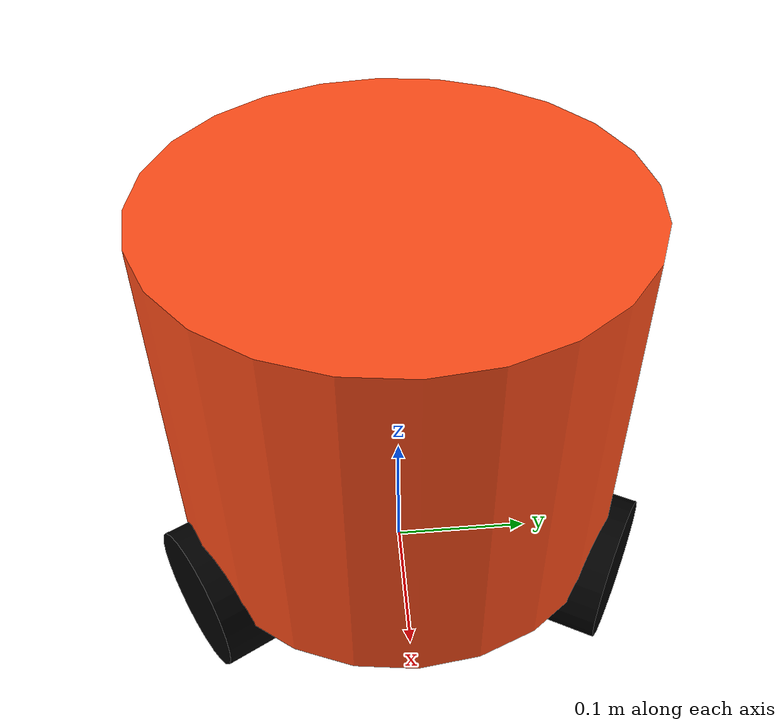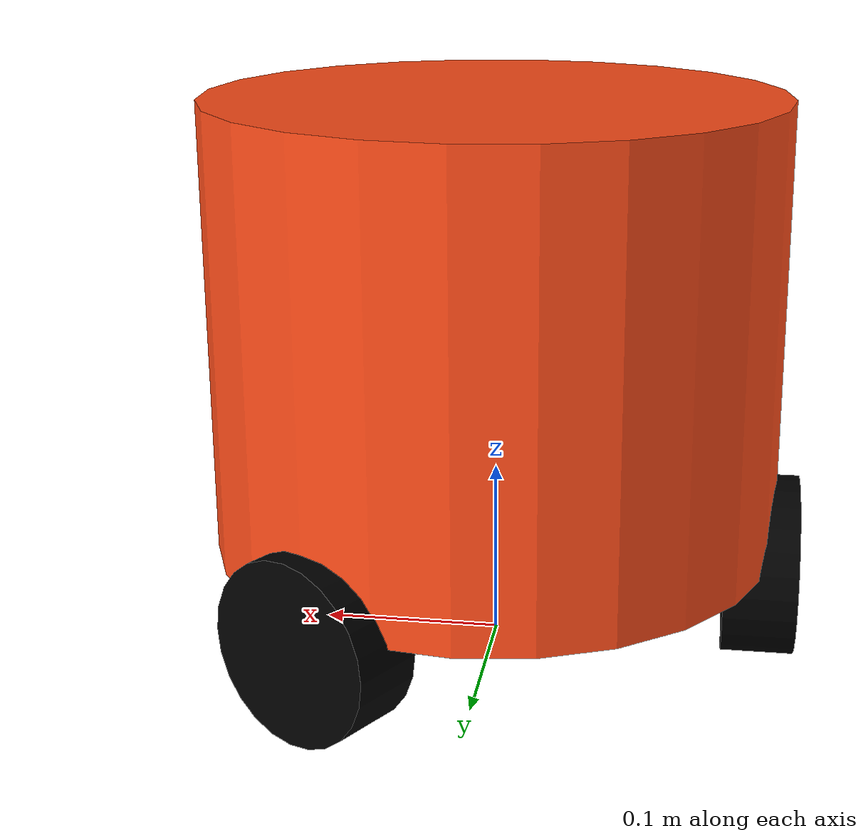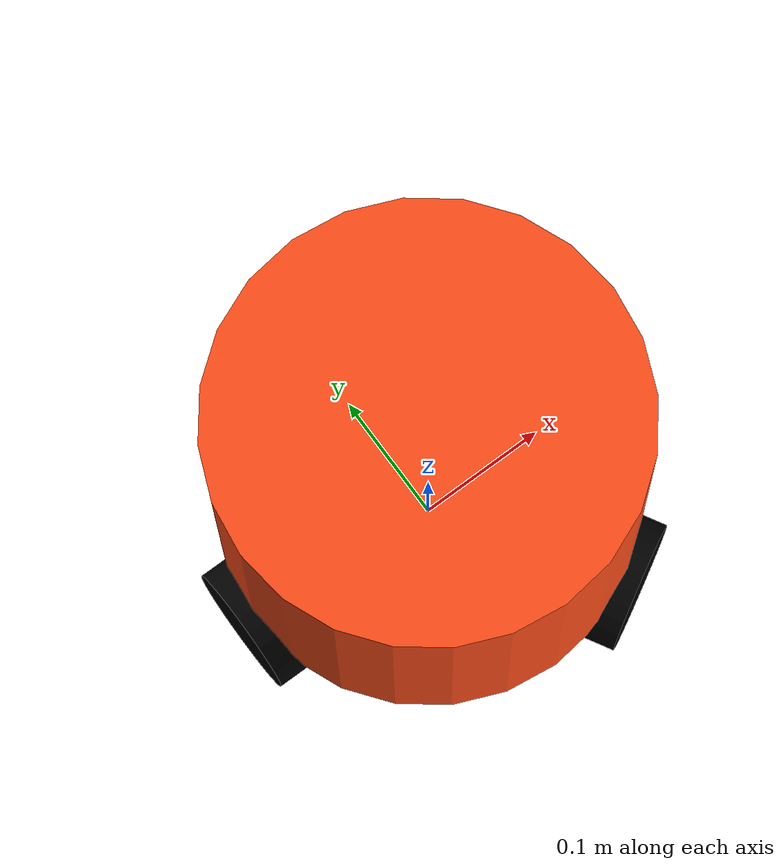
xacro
<?xml version="1.0"?>
<robot xmlns:xacro="http://www.ros.org/wiki/xacro" >

    <xacro:include filename="inertial_macros.xacro"/>
    <xacro:include filename="omniwheel_macros.xacro"/>

    <xacro:property name="robot_name" value="nunbot"/>

    <!-- Robot dimensions -->
    <xacro:property name="chassis_diameter" value="0.315"/>
    <xacro:property name="chassis_height" value="0.25"/>
    <xacro:property name="chassis_mass" value="1.0"/>

    <!-- Omni wheel specs -->
    <xacro:property name="wheel_radius" value="0.05"/> <!-- 10 cm diameter -->
    <xacro:property name="wheel_thickness" value="0.04"/>
    <xacro:property name="wheel_mass" value="0.05"/>
    <!-- Wheels placed at radius from center equal to chassis radius -->
    <xacro:property name="wheel_offset_radius" value="${(chassis_diameter / 2)-0.0075}"/>
    <xacro:property name="wheel_offset_z" value="0.05"/>

    <material name="white">
        <color rgba="1 1 1 1" />
    </material>

    <material name="orange">
        <color rgba="1 0.3 0.1 1"/>
    </material>

    <material name="blue">
        <color rgba="0.2 0.2 1 1"/>
    </material>

    <material name="black">
        <color rgba="0 0 0 1"/>
    </material>

    <material name="red">
        <color rgba="1 0 0 1"/>
    </material>

    <!-- BASE_FOOTPRINT LINK -->
    <link name="${robot_name}/base_footprint">
    </link>

    <!-- BASE_FOOTPRINT LINK -->
    <joint name="base_footprint_joint" type="fixed">
        <parent link="${robot_name}/base_footprint"/>
        <child link="${robot_name}/base_link"/>
        <origin xyz="0 0 0" rpy="0 0 0"/>
    </joint>

    <!-- BASE LINK -->
    <link name="${robot_name}/base_link">
    </link>

    <!-- CHASSIS LINK -->
    <joint name="chassis_joint" type="fixed">
        <parent link="${robot_name}/base_link"/>
        <child link="${robot_name}/chassis"/>
        <origin xyz="0 0 ${wheel_radius+0.01}"/>
    </joint>

    <link name="${robot_name}/chassis">
        <visual>
            <origin xyz="0 0 ${chassis_height/2}"/>
            <geometry>
                <cylinder radius="${chassis_diameter / 2}" length="${chassis_height}"/>
            </geometry>
            <material name="orange"/>
        </visual>
        <collision>
            <origin xyz="0 0 ${chassis_height/2}"/>
            <geometry>
                <cylinder radius="${chassis_diameter / 2}" length="${chassis_height}"/>
            </geometry>
        </collision>
        <xacro:inertial_cylinder mass="${chassis_mass}" length="${chassis_height}" radius="${chassis_diameter / 2}">
            <origin xyz="0 0 0" rpy="0 0 0"/>
        </xacro:inertial_cylinder>
    </link>

    <gazebo reference="${robot_name}/chassis">
        <material>Gazebo/Orange</material>
    </gazebo>

    <!-- Wheels-->
    <xacro:omni_wheel name="${robot_name}/wheel_1" parent="${robot_name}/base_link" angle_deg="60" yaw="${pi-pi/6}"/>
    <xacro:omni_wheel name="${robot_name}/wheel_2" parent="${robot_name}/base_link" angle_deg="180" yaw="${-pi/2}"/>
    <xacro:omni_wheel name="${robot_name}/wheel_3" parent="${robot_name}/base_link" angle_deg="300" yaw="${pi/6}"/>

</robot>

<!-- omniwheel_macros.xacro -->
<robot xmlns:xacro="http://www.ros.org/wiki/xacro" >

    <xacro:macro name="omni_wheel" params="name parent angle_deg yaw">
        <xacro:property name="angle_rad" value="${float(angle_deg) * pi / 180}"/>
        <xacro:property name="x" value="${float(wheel_offset_radius) * cos(angle_rad)}"/>
        <xacro:property name="y" value="${float(wheel_offset_radius) * sin(angle_rad)}"/>

        <link name="${name}">
            <visual>
                <origin xyz="0 0 0" rpy="0 0 0"/>
                <geometry>
                    <cylinder radius="${wheel_radius}" length="${wheel_thickness}"/>
                </geometry>
                <material name="black"/>
            </visual>

            <collision>
                <origin xyz="0 0 0" rpy="0 0 0"/>
                <geometry>
                    <cylinder radius="${wheel_radius}" length="${wheel_thickness}"/>
                </geometry>
            </collision>

            <xacro:inertial_cylinder mass="${wheel_mass}" length="${wheel_thickness}" radius="${wheel_radius}">
                <origin xyz="0 0 0" rpy="0 0 0"/>
            </xacro:inertial_cylinder>

        </link>

        <joint name="${name}_joint" type="continuous">
            <parent link="${parent}"/>
            <child link="${name}"/>
            <origin xyz="${x} ${y} ${wheel_offset_z}" rpy="${-pi / 2} 0 ${yaw}"/>
            <axis xyz="0 0 1"/>
        </joint>

        <gazebo reference="${name}">
            <material>Gazebo/Black</material>
        </gazebo>
    </xacro:macro>

</robot>
